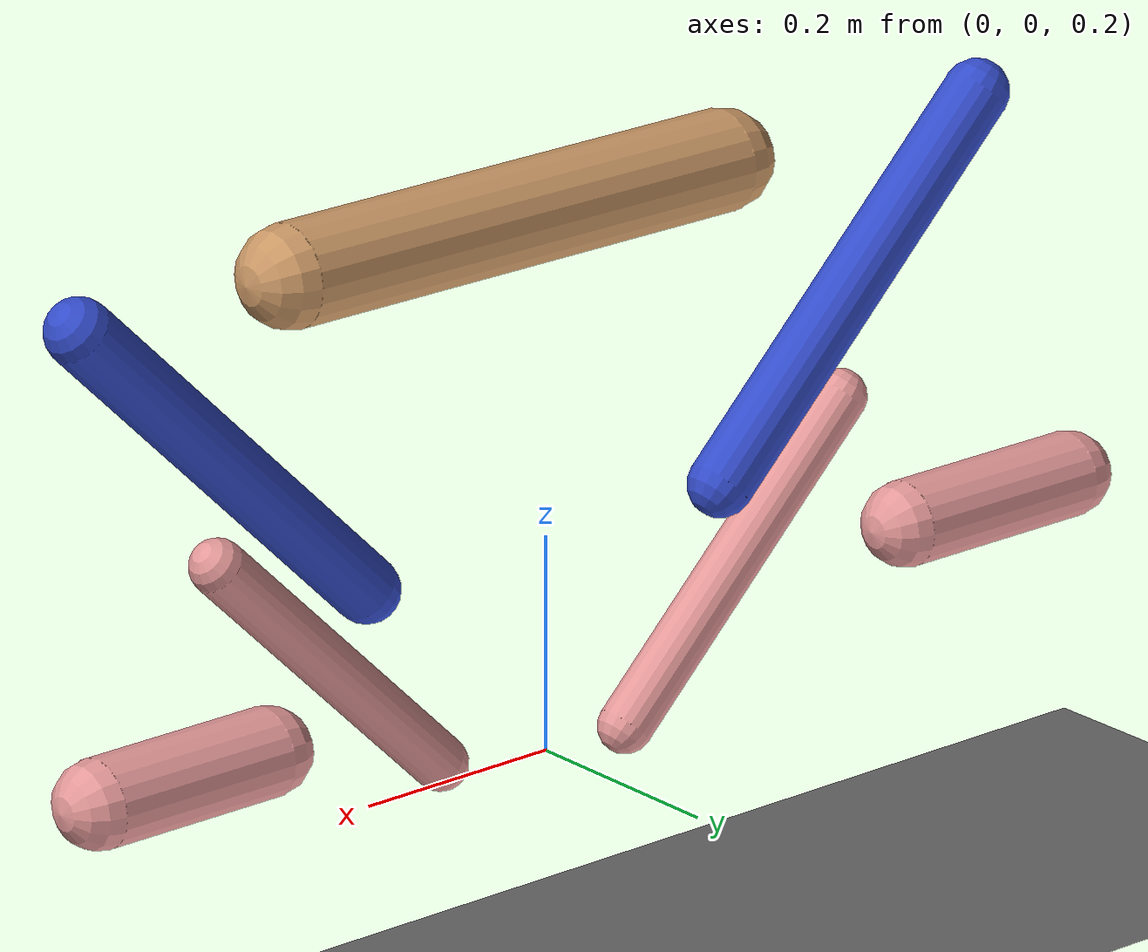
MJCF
<?xml version="1.0"?>
<mujoco model="half_cheetah_softcontact">
  <!-- compiler / option -->
  <compiler angle="radian" coordinate="local" inertiafromgeom="true"
            settotalmass="14"/>
  <!-- integrator = implicitfast で数値減衰を追加 -->
  <option timestep="0.002" integrator="implicitfast"
          gravity="0 0 -9.81" solver="CG" iterations="20"/>

  <!-- default -->
  <default>
    <!-- ❶ 全ジオム共通：接触を軟らかく -->
    <geom type="capsule"
          friction=".9 .4 .1"
          solimp="0.95 0.99 0.002"
          solref="0.04 1"/>
    <!-- ❷ ジョイント・モーターは元のまま -->
    <joint armature=".1" damping=".01" limited="true"/>
    <motor ctrllimited="true" ctrlrange="-1 1"/>
  </default>

  <!-- assets -->
  <asset>
    <texture builtin="checker" name="tex" width="100" height="100"
             rgb1="0 0 0" rgb2="0.8 0.8 0.8"/>
    <material name="MatPlane" texture="tex" texrepeat="60 60"
              specular="0.3" shininess="0.1" reflectance="0.5"/>
  </asset>

  <!-- world + bodies -->
  <worldbody>

    <!-- ground plane -->
    <geom name="floor" type="plane" pos="0 0 0"
          size="40 40 1" material="MatPlane"/>

    <!-- light -->
    <light directional="true"
          diffuse="1 1 1"  specular="0.1 0.1 0.1"
          pos="0 0 2"       dir="0 0 -1"/>

    <!-- torso (root) -->
    <body name="torso" pos="0 0 .7">
      <!-- camera -->
      <camera name="track" mode="trackcom" pos="0 -3 0.35"/>

      <!-- root joints -->
      <joint name="rootx" type="slide" axis="1 0 0" stiffness="0" damping="0" limited="false"/>
      <joint name="rootz" type="slide" axis="0 0 1" stiffness="0" damping="0" limited="false"/>
      <joint name="rooty" type="hinge" axis="0 1 0"  stiffness="0" damping="0" limited="false"/>

      <!-- torso geom -->
      <geom name="torso_geom" size=".046" fromto="-.2 0 0 .28 0 0" rgba=".8 .6 .4 1"/>

      <!-- rear leg -->
      <body name="bthigh" pos="-.5 0 0">
        <joint name="bthigh" type="hinge" axis="0 1 0" range="-.52 1.05"/>
        <geom  name="bthigh_geom" fromto="0 0 0 .3 0 -.3" size=".03" rgba=".2 .3 .8 1"/>

        <body name="bshin" pos=".16 0 -.25">
          <joint name="bshin" type="hinge" axis="0 1 0" range="-.785 .785"/>
          <geom  name="bshin_geom" fromto="0 0 0 .25 0 -.25" size=".025" rgba=".9 .6 .6 1"/>

          <body name="bfoot" pos="-.28 0 -.14">
            <joint name="bfoot" type="hinge" axis="0 1 0" range="-.4 .785"/>
            <!-- ❸ 足裏だけさらに軟らかい接触 -->
            <geom name="bfoot_geom" fromto="0 0 0 .2 0 -.0" size=".04"
                  rgba=".9 .6 .6 1"
                  solref="0.08 0.8" solimp="0.9 0.97 0.002"/>
          </body>
        </body>
      </body>

      <!-- front leg -->
      <body name="fthigh" pos=".5 0 0">
        <joint name="fthigh" type="hinge" axis="0 1 0" range="-1 .7"/>
        <geom  name="fthigh_geom" fromto="0 0 0 -.3 0 -.3" size=".03" rgba=".2 .3 .8 1"/>

        <body name="fshin" pos="-.14 0 -.24">
          <joint name="fshin" type="hinge" axis="0 1 0" range="-1.2 .87"/>
          <geom  name="fshin_geom" fromto="0 0 0 -.24 0 -.24" size=".025" rgba=".9 .6 .6 1"/>

          <body name="ffoot" pos=".13 0 -.18">
            <joint name="ffoot" type="hinge" axis="0 1 0" range="-.5 .5"/>
            <!-- 同じく前足も軟らか接触 -->
            <geom name="ffoot_geom" fromto="0 0 0 -.18 0 -.0" size=".04"
                  rgba=".9 .6 .6 1"
                  solref="0.08 0.8" solimp="0.9 0.97 0.002"/>
          </body>
        </body>
      </body>

    </body>
  </worldbody>

  <!-- actuators -->
  <actuator>
    <motor joint="bthigh" gear="120"/>
    <motor joint="bshin"  gear="90"/>
    <motor joint="bfoot"  gear="60"/>
    <motor joint="fthigh" gear="120"/>
    <motor joint="fshin"  gear="60"/>
    <motor joint="ffoot"  gear="30"/>
  </actuator>
</mujoco>
